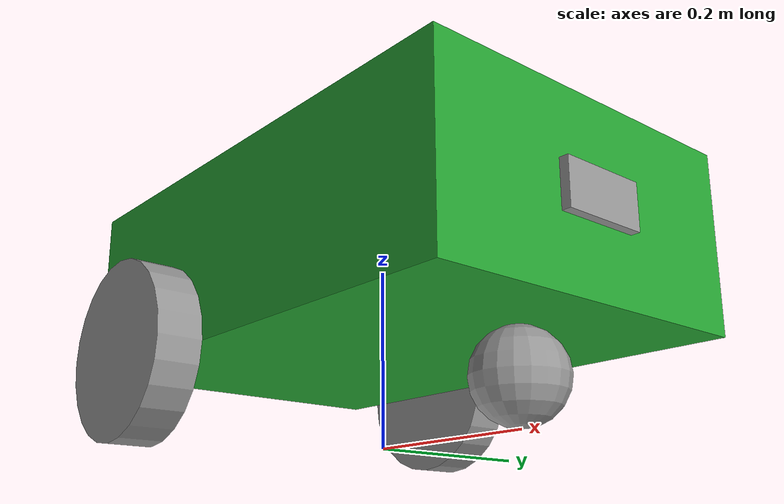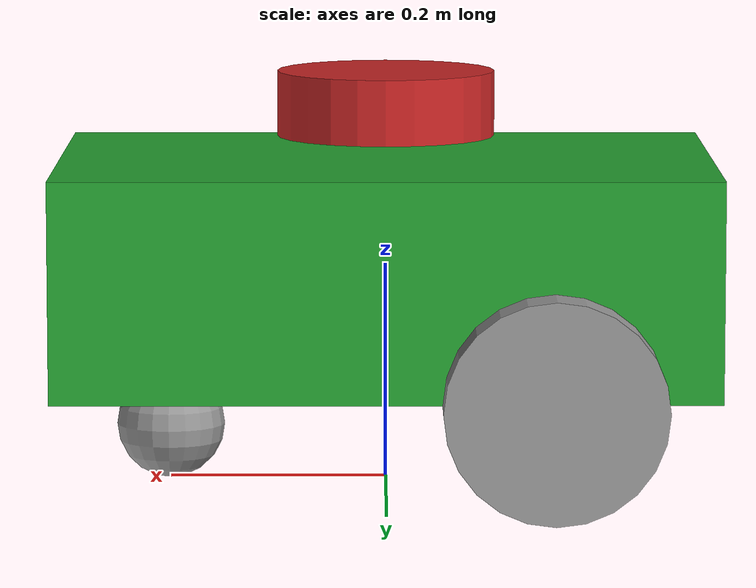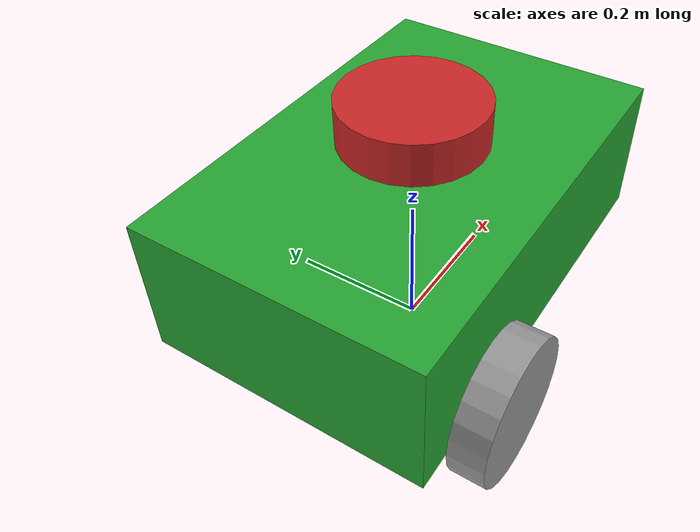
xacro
<?xml version="1.0"?>
<robot name="my_robot" xmlns:xacro="http://www.ros.org/wiki/xacro">

    <xacro:include filename="common_properties.urdf.xacro" />
    <xacro:include filename="mobile_base.urdf.xacro" />
    <xacro:include filename="mobile_base_gazebo.urdf.xacro" />
    <xacro:include filename="camera.urdf.xacro" />
    <xacro:include filename="lidar.urdf.xacro" />

</robot>

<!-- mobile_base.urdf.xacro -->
<robot xmlns:xacro="http://www.ros.org/wiki/xacro">

    <xacro:property name="base_length" value="0.6" />
    <xacro:property name="base_width" value="0.4" />
    <xacro:property name="base_height" value="0.2" />
    <xacro:property name="wheel_radius" value="0.1" />
    <xacro:property name="wheel_length" value="0.05" />

    <link name="base_footprint" />

    <link name="base_link">
        <visual>
            <geometry>
                <box size="${base_length} ${base_width} ${base_height}" />
            </geometry>
            <origin xyz="0 0 ${base_height / 2.0}" rpy="0 0 0" />
            <material name="green" />
        </visual>
        <collision>
            <geometry>
                <box size="${base_length} ${base_width} ${base_height}" />
            </geometry>
            <origin xyz="0 0 ${base_height / 2.0}" rpy="0 0 0" />
        </collision>
        <xacro:box_inertia m="5.0" x="${2*base_length}" y="${2*base_width}" z="${2*base_height}"
                           o_xyz="0 0 ${base_height / 2.0}" o_rpy="0 0 0" />
    </link>

    <xacro:macro name="wheel_link" params="prefix">
        <link name="${prefix}_wheel_link">
            <visual>
                <geometry>
                    <cylinder radius="${wheel_radius}" length="${wheel_length}" />
                </geometry>
                <origin xyz="0 0 0" rpy="${pi / 2.0} 0 0" />
                <material name="gray" />
            </visual>
            <collision>
                <geometry>
                    <sphere radius="${wheel_radius}" />
                </geometry>
                <origin xyz="0 0 0" rpy="0 0 0" />
            </collision>
            <xacro:cylinder_inertia m="1.0" r="${2*wheel_radius}" l="${2*wheel_length}"
                                    o_xyz="0 0 0" o_rpy="${pi / 2.0} 0 0" />
        </link>
    </xacro:macro>

    <xacro:wheel_link prefix="right" />
    <xacro:wheel_link prefix="left" />

    <link name="caster_wheel_link">
        <visual>
            <geometry>
                <sphere radius="${wheel_radius / 2.0}" />
            </geometry>
            <origin xyz="0 0 0" rpy="0 0 0" />
            <material name="gray" />
        </visual>
        <collision>
            <geometry>
                <sphere radius="${wheel_radius / 2.0}" />
            </geometry>
            <origin xyz="0 0 0" rpy="0 0 0" />
        </collision>
        <xacro:sphere_inertia m="0.5" r="${2*wheel_radius / 2.0}"
                              o_xyz="0 0 0" o_rpy="0 0 0" />
    </link>

    <joint name="base_joint" type="fixed">
        <parent link="base_footprint" />
        <child link="base_link" />
        <origin xyz="0 0 ${wheel_radius}" rpy="0 0 0" />
    </joint>

    <joint name="base_right_wheel_joint" type="continuous">
        <parent link="base_link" />
        <child link="right_wheel_link" />
        <origin xyz="${-base_length / 4.0} ${-(base_width + wheel_length) / 2.0} 0" rpy="0 0 0" />
        <axis xyz="0 1 0" />
    </joint>

    <joint name="base_left_wheel_joint" type="continuous">
        <parent link="base_link" />
        <child link="left_wheel_link" />
        <origin xyz="${-base_length / 4.0} ${(base_width + wheel_length) / 2.0} 0" rpy="0 0 0" />
        <axis xyz="0 1 0" />
    </joint>

    <joint name="base_caster_wheel_joint" type="fixed">
        <parent link="base_link" />
        <child link="caster_wheel_link" />
        <origin xyz="${base_length / 3.0} 0 ${-wheel_radius / 2.0}" rpy="0 0 0" />
    </joint>

</robot>

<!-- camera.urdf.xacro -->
<robot name="my_robot" xmlns:xacro="http://www.ros.org/wiki/xacro">

    <xacro:property name="camera_length" value="0.01" />
    <xacro:property name="camera_width" value="0.1" />
    <xacro:property name="camera_height" value="0.05" />

    <link name="camera_link">
        <visual>
            <geometry>
                <box size="${camera_length} ${camera_width} ${camera_height}" />
            </geometry>
            <material name="gray" />
        </visual>
        <collision>
            <geometry>
                <box size="${camera_length} ${camera_width} ${camera_height}" />
            </geometry>
        </collision>
        <xacro:box_inertia m="0.1" x="${camera_length}" y="${camera_width}" z="${camera_height}"
                           o_xyz="0 0 0" o_rpy="0 0 0" />
    </link>

    <joint name="base_camera_joint" type="fixed">
        <parent link="base_link"/>
        <child link="camera_link"/>
        <origin xyz="${(base_length + camera_length) / 2.0} 0 ${base_height / 2.0}" rpy="0.0 0.0 0.0"/>
    </joint>

    <joint name="camera_rgb_joint" type="fixed">
        <origin xyz="0.005 0.018 0.013" rpy="0 0 0"/>
        <parent link="camera_link"/>
        <child link="camera_rgb_frame"/>
    </joint>
    <link name="camera_rgb_frame"/>

    <joint name="camera_rgb_optical_joint" type="fixed">
        <origin xyz="0 0 0" rpy="-1.57 0 -1.57"/>
        <parent link="camera_rgb_frame"/>
        <child link="camera_rgb_optical_frame"/>
    </joint>
    <link name="camera_rgb_optical_frame"/>

    <joint name="camera_depth_joint" type="fixed">
        <origin xyz="0.005 0.028 0.013" rpy="0 0 0"/>
        <parent link="camera_link"/>
        <child link="camera_depth_frame"/>
    </joint>
    <link name="camera_depth_frame"/>

    <joint name="camera_depth_optical_joint" type="fixed">
        <origin xyz="0 0 0" rpy="-1.57 0 -1.57"/>
        <parent link="camera_depth_frame"/>
        <child link="camera_depth_optical_frame"/>
    </joint>
    <link name="camera_depth_optical_frame"/>

    <gazebo reference="camera_link">
        <material>Gazebo/Red</material>
        <sensor name="camera_sensor" type="camera">
            <pose>0 0 0 0 0 0</pose>
            <visualize>true</visualize>
            <update_rate>10.0</update_rate>
            <plugin name="camera_controller" filename="libgazebo_ros_camera.so">
                <frame_name>camera_link_optical</frame_name>
            </plugin>
        </sensor>
    </gazebo>

</robot>

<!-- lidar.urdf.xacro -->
<robot xmlns:xacro="http://www.ros.org/wiki/xacro" >

    <joint name="laser_joint" type="fixed">
        <parent link="base_link"/>
        <child link="laser_frame"/>
        <origin xyz="0.0 0.0 ${base_height + 0.05}" rpy="0 0 0"/>
    </joint>

    <link name="laser_frame">
        <visual>
            <geometry>
                <cylinder radius="0.1" length="0.06"/>
            </geometry>
            <material name="red"/>
        </visual>
        <collision>
            <geometry>
                <cylinder radius="0.1" length="0.06"/>
            </geometry>
        </collision>
        <xacro:cylinder_inertia m="1.0" r="0.1" l="0.06"
                                o_xyz="0 0 0" o_rpy="0 0 0" />
    </link>

    <gazebo reference="laser_frame">
        <material>Gazebo/Red</material>

        <sensor name="laser" type="ray">
            <pose> 0 0 0 0 0 0 </pose>
            <visualize>true</visualize>
            <update_rate>10</update_rate>
            <ray>
                <scan>
                    <horizontal>
                        <samples>360</samples>
                        <min_angle>-3.14</min_angle>
                        <max_angle>3.14</max_angle>
                    </horizontal>
                </scan>
                <range>
                    <min>0.3</min>
                    <max>12</max>
                </range>
            </ray>
            <plugin name="laser_controller" filename="libgazebo_ros_ray_sensor.so">
                <ros>
                    <argument>~/out:=scan</argument>
                </ros>
                <output_type>sensor_msgs/LaserScan</output_type>
                <frame_name>laser_frame</frame_name>
            </plugin>
        </sensor>
    </gazebo>

</robot>
